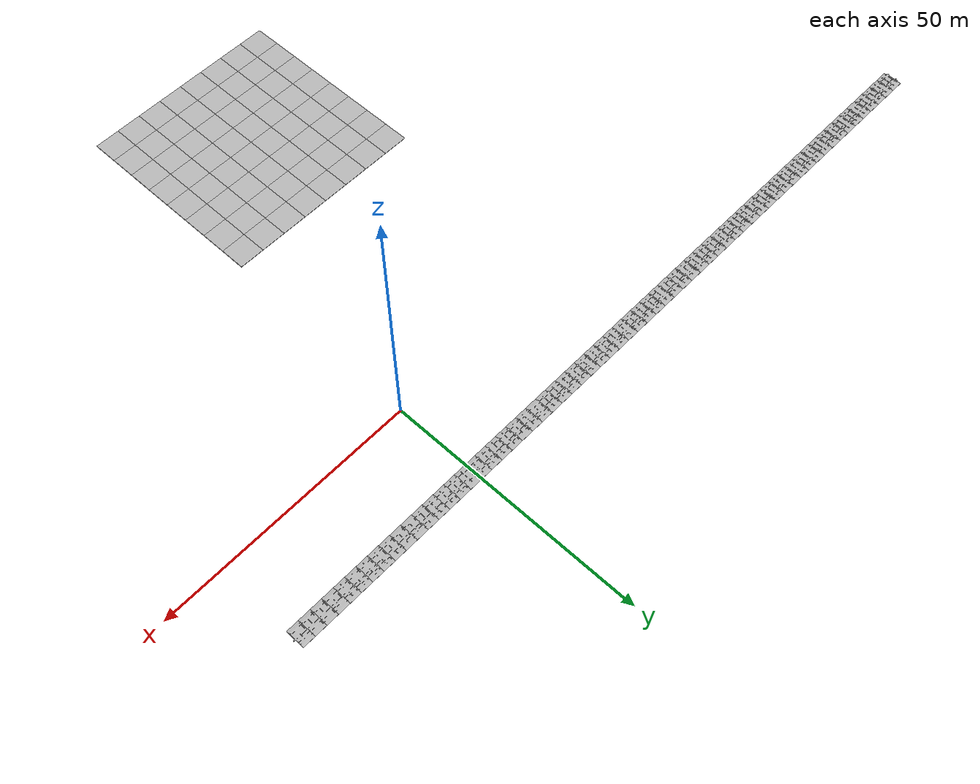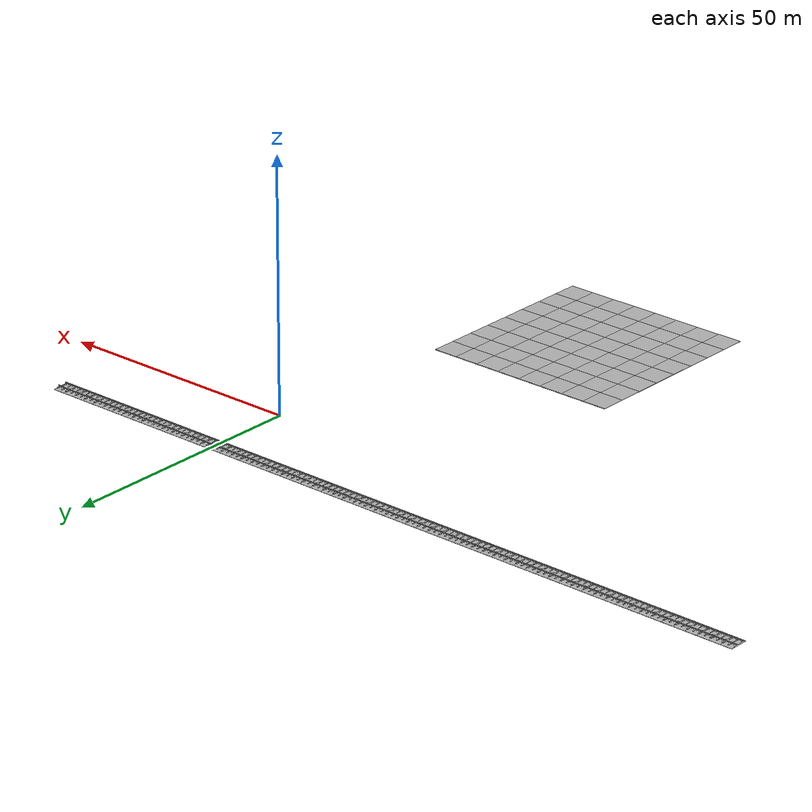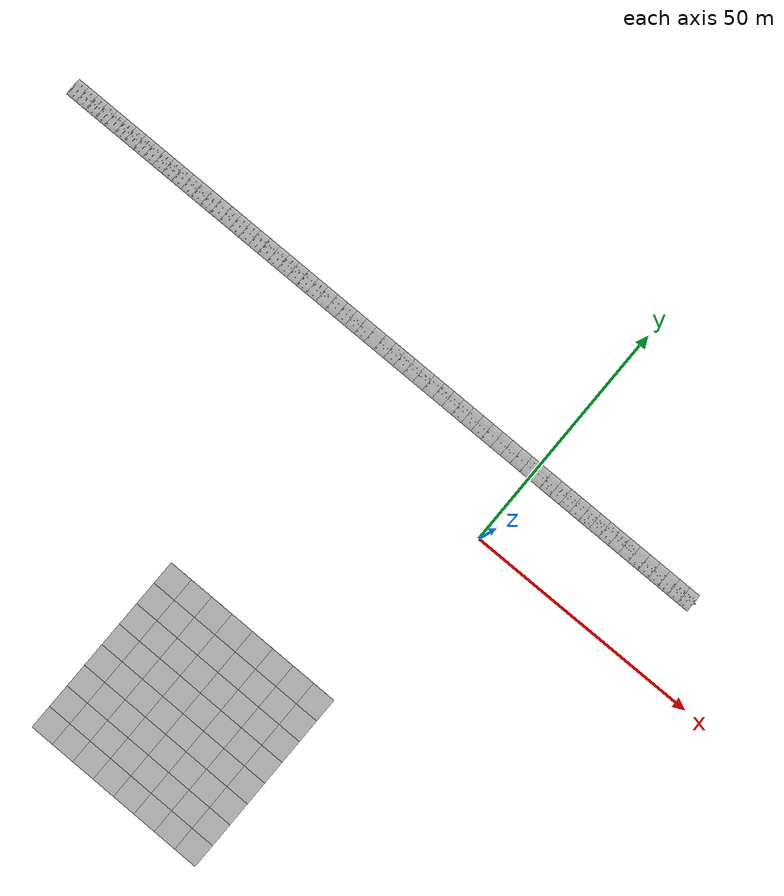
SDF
<sdf version="1.7">
 <world name="default">
  <model name="railway64_2">
   <model name="railway32">
    <model name="railway16">
     <model name="railway8">
      <model name="railway4">
       <model name="railway2">
        <model name="railway">
         <static>1</static>
         <link name="link">
          <visual name="visual"><geometry><mesh><uri>model://railway/meshes/model.dae</uri></mesh></geometry></visual>
         </link>
         <pose>1.19969 -6.9e-05 0 0 -0 0</pose>
        </model>
        <model name="railway_0">
         <static>1</static>
         <link name="link">
          <visual name="visual"><geometry><mesh><uri>model://railway/meshes/model.dae</uri></mesh></geometry></visual>
         </link>
         <pose>-1.1997 6.9e-05 0 0 -0 0</pose>
        </model>
        <static>0</static>
        <pose>-2.39934 4.6e-05 0 0 -0 0</pose>
       </model>
       <model name="railway2_0">
        <model name="railway">
         <static>1</static>
         <link name="link">
          <visual name="visual"><geometry><mesh><uri>model://railway/meshes/model.dae</uri></mesh></geometry></visual>
         </link>
         <pose>1.19969 -6.9e-05 0 0 -0 0</pose>
        </model>
        <model name="railway_0">
         <static>1</static>
         <link name="link">
          <visual name="visual"><geometry><mesh><uri>model://railway/meshes/model.dae</uri></mesh></geometry></visual>
         </link>
         <pose>-1.1997 6.9e-05 0 0 -0 0</pose>
        </model>
        <static>0</static>
        <pose>2.39934 -5.4e-05 0 0 -0 0</pose>
       </model>
       <static>0</static>
       <pose>4.79871 -0.000105 0 0 -0 0</pose>
      </model>
      <model name="railway4_0">
       <model name="railway2">
        <model name="railway">
         <static>1</static>
         <link name="link">
          <visual name="visual"><geometry><mesh><uri>model://railway/meshes/model.dae</uri></mesh></geometry></visual>
         </link>
         <pose>1.19969 -6.9e-05 0 0 -0 0</pose>
        </model>
        <model name="railway_0">
         <static>1</static>
         <link name="link">
          <visual name="visual"><geometry><mesh><uri>model://railway/meshes/model.dae</uri></mesh></geometry></visual>
         </link>
         <pose>-1.1997 6.9e-05 0 0 -0 0</pose>
        </model>
        <static>0</static>
        <pose>-2.39934 4.6e-05 0 0 -0 0</pose>
       </model>
       <model name="railway2_0">
        <model name="railway">
         <static>1</static>
         <link name="link">
          <visual name="visual"><geometry><mesh><uri>model://railway/meshes/model.dae</uri></mesh></geometry></visual>
         </link>
         <pose>1.19969 -6.9e-05 0 0 -0 0</pose>
        </model>
        <model name="railway_0">
         <static>1</static>
         <link name="link">
          <visual name="visual"><geometry><mesh><uri>model://railway/meshes/model.dae</uri></mesh></geometry></visual>
         </link>
         <pose>-1.1997 6.9e-05 0 0 -0 0</pose>
        </model>
        <static>0</static>
        <pose>2.39934 -5.4e-05 0 0 -0 0</pose>
       </model>
       <static>0</static>
       <pose>-4.79871 9.6e-05 0 0 -0 0</pose>
      </model>
      <static>0</static>
      <pose>9.5973 -0.000147 0 0 -0 0</pose>
     </model>
     <model name="railway8_0">
      <model name="railway4">
       <model name="railway2">
        <model name="railway">
         <static>1</static>
         <link name="link">
          <visual name="visual"><geometry><mesh><uri>model://railway/meshes/model.dae</uri></mesh></geometry></visual>
         </link>
         <pose>1.19969 -6.9e-05 0 0 -0 0</pose>
        </model>
        <model name="railway_0">
         <static>1</static>
         <link name="link">
          <visual name="visual"><geometry><mesh><uri>model://railway/meshes/model.dae</uri></mesh></geometry></visual>
         </link>
         <pose>-1.1997 6.9e-05 0 0 -0 0</pose>
        </model>
        <static>0</static>
        <pose>-2.39934 4.6e-05 0 0 -0 0</pose>
       </model>
       <model name="railway2_0">
        <model name="railway">
         <static>1</static>
         <link name="link">
          <visual name="visual"><geometry><mesh><uri>model://railway/meshes/model.dae</uri></mesh></geometry></visual>
         </link>
         <pose>1.19969 -6.9e-05 0 0 -0 0</pose>
        </model>
        <model name="railway_0">
         <static>1</static>
         <link name="link">
          <visual name="visual"><geometry><mesh><uri>model://railway/meshes/model.dae</uri></mesh></geometry></visual>
         </link>
         <pose>-1.1997 6.9e-05 0 0 -0 0</pose>
        </model>
        <static>0</static>
        <pose>2.39934 -5.4e-05 0 0 -0 0</pose>
       </model>
       <static>0</static>
       <pose>4.79871 -0.000105 0 0 -0 0</pose>
      </model>
      <model name="railway4_0">
       <model name="railway2">
        <model name="railway">
         <static>1</static>
         <link name="link">
          <visual name="visual"><geometry><mesh><uri>model://railway/meshes/model.dae</uri></mesh></geometry></visual>
         </link>
         <pose>1.19969 -6.9e-05 0 0 -0 0</pose>
        </model>
        <model name="railway_0">
         <static>1</static>
         <link name="link">
          <visual name="visual"><geometry><mesh><uri>model://railway/meshes/model.dae</uri></mesh></geometry></visual>
         </link>
         <pose>-1.1997 6.9e-05 0 0 -0 0</pose>
        </model>
        <static>0</static>
        <pose>-2.39934 4.6e-05 0 0 -0 0</pose>
       </model>
       <model name="railway2_0">
        <model name="railway">
         <static>1</static>
         <link name="link">
          <visual name="visual"><geometry><mesh><uri>model://railway/meshes/model.dae</uri></mesh></geometry></visual>
         </link>
         <pose>1.19969 -6.9e-05 0 0 -0 0</pose>
        </model>
        <model name="railway_0">
         <static>1</static>
         <link name="link">
          <visual name="visual"><geometry><mesh><uri>model://railway/meshes/model.dae</uri></mesh></geometry></visual>
         </link>
         <pose>-1.1997 6.9e-05 0 0 -0 0</pose>
        </model>
        <static>0</static>
        <pose>2.39934 -5.4e-05 0 0 -0 0</pose>
       </model>
       <static>0</static>
       <pose>-4.79871 9.6e-05 0 0 -0 0</pose>
      </model>
      <static>0</static>
      <pose>-9.59731 0.000145 0 0 -0 0</pose>
     </model>
     <static>0</static>
     <pose>19.1948 -0.00044 0 0 -0 0</pose>
    </model>
    <model name="railway16_0">
     <model name="railway8">
      <model name="railway4">
       <model name="railway2">
        <model name="railway">
         <static>1</static>
         <link name="link">
          <visual name="visual"><geometry><mesh><uri>model://railway/meshes/model.dae</uri></mesh></geometry></visual>
         </link>
         <pose>1.19969 -6.9e-05 0 0 -0 0</pose>
        </model>
        <model name="railway_0">
         <static>1</static>
         <link name="link">
          <visual name="visual"><geometry><mesh><uri>model://railway/meshes/model.dae</uri></mesh></geometry></visual>
         </link>
         <pose>-1.1997 6.9e-05 0 0 -0 0</pose>
        </model>
        <static>0</static>
        <pose>-2.39934 4.6e-05 0 0 -0 0</pose>
       </model>
       <model name="railway2_0">
        <model name="railway">
         <static>1</static>
         <link name="link">
          <visual name="visual"><geometry><mesh><uri>model://railway/meshes/model.dae</uri></mesh></geometry></visual>
         </link>
         <pose>1.19969 -6.9e-05 0 0 -0 0</pose>
        </model>
        <model name="railway_0">
         <static>1</static>
         <link name="link">
          <visual name="visual"><geometry><mesh><uri>model://railway/meshes/model.dae</uri></mesh></geometry></visual>
         </link>
         <pose>-1.1997 6.9e-05 0 0 -0 0</pose>
        </model>
        <static>0</static>
        <pose>2.39934 -5.4e-05 0 0 -0 0</pose>
       </model>
       <static>0</static>
       <pose>4.79871 -0.000105 0 0 -0 0</pose>
      </model>
      <model name="railway4_0">
       <model name="railway2">
        <model name="railway">
         <static>1</static>
         <link name="link">
          <visual name="visual"><geometry><mesh><uri>model://railway/meshes/model.dae</uri></mesh></geometry></visual>
         </link>
         <pose>1.19969 -6.9e-05 0 0 -0 0</pose>
        </model>
        <model name="railway_0">
         <static>1</static>
         <link name="link">
          <visual name="visual"><geometry><mesh><uri>model://railway/meshes/model.dae</uri></mesh></geometry></visual>
         </link>
         <pose>-1.1997 6.9e-05 0 0 -0 0</pose>
        </model>
        <static>0</static>
        <pose>-2.39934 4.6e-05 0 0 -0 0</pose>
       </model>
       <model name="railway2_0">
        <model name="railway">
         <static>1</static>
         <link name="link">
          <visual name="visual"><geometry><mesh><uri>model://railway/meshes/model.dae</uri></mesh></geometry></visual>
         </link>
         <pose>1.19969 -6.9e-05 0 0 -0 0</pose>
        </model>
        <model name="railway_0">
         <static>1</static>
         <link name="link">
          <visual name="visual"><geometry><mesh><uri>model://railway/meshes/model.dae</uri></mesh></geometry></visual>
         </link>
         <pose>-1.1997 6.9e-05 0 0 -0 0</pose>
        </model>
        <static>0</static>
        <pose>2.39934 -5.4e-05 0 0 -0 0</pose>
       </model>
       <static>0</static>
       <pose>-4.79871 9.6e-05 0 0 -0 0</pose>
      </model>
      <static>0</static>
      <pose>9.5973 -0.000147 0 0 -0 0</pose>
     </model>
     <model name="railway8_0">
      <model name="railway4">
       <model name="railway2">
        <model name="railway">
         <static>1</static>
         <link name="link">
          <visual name="visual"><geometry><mesh><uri>model://railway/meshes/model.dae</uri></mesh></geometry></visual>
         </link>
         <pose>1.19969 -6.9e-05 0 0 -0 0</pose>
        </model>
        <model name="railway_0">
         <static>1</static>
         <link name="link">
          <visual name="visual"><geometry><mesh><uri>model://railway/meshes/model.dae</uri></mesh></geometry></visual>
         </link>
         <pose>-1.1997 6.9e-05 0 0 -0 0</pose>
        </model>
        <static>0</static>
        <pose>-2.39934 4.6e-05 0 0 -0 0</pose>
       </model>
       <model name="railway2_0">
        <model name="railway">
         <static>1</static>
         <link name="link">
          <visual name="visual"><geometry><mesh><uri>model://railway/meshes/model.dae</uri></mesh></geometry></visual>
         </link>
         <pose>1.19969 -6.9e-05 0 0 -0 0</pose>
        </model>
        <model name="railway_0">
         <static>1</static>
         <link name="link">
          <visual name="visual"><geometry><mesh><uri>model://railway/meshes/model.dae</uri></mesh></geometry></visual>
         </link>
         <pose>-1.1997 6.9e-05 0 0 -0 0</pose>
        </model>
        <static>0</static>
        <pose>2.39934 -5.4e-05 0 0 -0 0</pose>
       </model>
       <static>0</static>
       <pose>4.79871 -0.000105 0 0 -0 0</pose>
      </model>
      <model name="railway4_0">
       <model name="railway2">
        <model name="railway">
         <static>1</static>
         <link name="link">
          <visual name="visual"><geometry><mesh><uri>model://railway/meshes/model.dae</uri></mesh></geometry></visual>
         </link>
         <pose>1.19969 -6.9e-05 0 0 -0 0</pose>
        </model>
        <model name="railway_0">
         <static>1</static>
         <link name="link">
          <visual name="visual"><geometry><mesh><uri>model://railway/meshes/model.dae</uri></mesh></geometry></visual>
         </link>
         <pose>-1.1997 6.9e-05 0 0 -0 0</pose>
        </model>
        <static>0</static>
        <pose>-2.39934 4.6e-05 0 0 -0 0</pose>
       </model>
       <model name="railway2_0">
        <model name="railway">
         <static>1</static>
         <link name="link">
          <visual name="visual"><geometry><mesh><uri>model://railway/meshes/model.dae</uri></mesh></geometry></visual>
         </link>
         <pose>1.19969 -6.9e-05 0 0 -0 0</pose>
        </model>
        <model name="railway_0">
         <static>1</static>
         <link name="link">
          <visual name="visual"><geometry><mesh><uri>model://railway/meshes/model.dae</uri></mesh></geometry></visual>
         </link>
         <pose>-1.1997 6.9e-05 0 0 -0 0</pose>
        </model>
        <static>0</static>
        <pose>2.39934 -5.4e-05 0 0 -0 0</pose>
       </model>
       <static>0</static>
       <pose>-4.79871 9.6e-05 0 0 -0 0</pose>
      </model>
      <static>0</static>
      <pose>-9.59731 0.000145 0 0 -0 0</pose>
     </model>
     <static>0</static>
     <pose>-19.1948 0.000444 0 0 -0 0</pose>
    </model>
    <static>0</static>
    <pose>38.3896 -0.000844 0 0 -0 0</pose>
   </model>
   <model name="railway32_0">
    <model name="railway16">
     <model name="railway8">
      <model name="railway4">
       <model name="railway2">
        <model name="railway">
         <static>1</static>
         <link name="link">
          <visual name="visual"><geometry><mesh><uri>model://railway/meshes/model.dae</uri></mesh></geometry></visual>
         </link>
         <pose>1.19969 -6.9e-05 0 0 -0 0</pose>
        </model>
        <model name="railway_0">
         <static>1</static>
         <link name="link">
          <visual name="visual"><geometry><mesh><uri>model://railway/meshes/model.dae</uri></mesh></geometry></visual>
         </link>
         <pose>-1.1997 6.9e-05 0 0 -0 0</pose>
        </model>
        <static>0</static>
        <pose>-2.39934 4.6e-05 0 0 -0 0</pose>
       </model>
       <model name="railway2_0">
        <model name="railway">
         <static>1</static>
         <link name="link">
          <visual name="visual"><geometry><mesh><uri>model://railway/meshes/model.dae</uri></mesh></geometry></visual>
         </link>
         <pose>1.19969 -6.9e-05 0 0 -0 0</pose>
        </model>
        <model name="railway_0">
         <static>1</static>
         <link name="link">
          <visual name="visual"><geometry><mesh><uri>model://railway/meshes/model.dae</uri></mesh></geometry></visual>
         </link>
         <pose>-1.1997 6.9e-05 0 0 -0 0</pose>
        </model>
        <static>0</static>
        <pose>2.39934 -5.4e-05 0 0 -0 0</pose>
       </model>
       <static>0</static>
       <pose>4.79871 -0.000105 0 0 -0 0</pose>
      </model>
      <model name="railway4_0">
       <model name="railway2">
        <model name="railway">
         <static>1</static>
         <link name="link">
          <visual name="visual"><geometry><mesh><uri>model://railway/meshes/model.dae</uri></mesh></geometry></visual>
         </link>
         <pose>1.19969 -6.9e-05 0 0 -0 0</pose>
        </model>
        <model name="railway_0">
         <static>1</static>
         <link name="link">
          <visual name="visual"><geometry><mesh><uri>model://railway/meshes/model.dae</uri></mesh></geometry></visual>
         </link>
         <pose>-1.1997 6.9e-05 0 0 -0 0</pose>
        </model>
        <static>0</static>
        <pose>-2.39934 4.6e-05 0 0 -0 0</pose>
       </model>
       <model name="railway2_0">
        <model name="railway">
         <static>1</static>
         <link name="link">
          <visual name="visual"><geometry><mesh><uri>model://railway/meshes/model.dae</uri></mesh></geometry></visual>
         </link>
         <pose>1.19969 -6.9e-05 0 0 -0 0</pose>
        </model>
        <model name="railway_0">
         <static>1</static>
         <link name="link">
          <visual name="visual"><geometry><mesh><uri>model://railway/meshes/model.dae</uri></mesh></geometry></visual>
         </link>
         <pose>-1.1997 6.9e-05 0 0 -0 0</pose>
        </model>
        <static>0</static>
        <pose>2.39934 -5.4e-05 0 0 -0 0</pose>
       </model>
       <static>0</static>
       <pose>-4.79871 9.6e-05 0 0 -0 0</pose>
      </model>
      <static>0</static>
      <pose>9.5973 -0.000147 0 0 -0 0</pose>
     </model>
     <model name="railway8_0">
      <model name="railway4">
       <model name="railway2">
        <model name="railway">
         <static>1</static>
         <link name="link">
          <visual name="visual"><geometry><mesh><uri>model://railway/meshes/model.dae</uri></mesh></geometry></visual>
         </link>
         <pose>1.19969 -6.9e-05 0 0 -0 0</pose>
        </model>
        <model name="railway_0">
         <static>1</static>
         <link name="link">
          <visual name="visual"><geometry><mesh><uri>model://railway/meshes/model.dae</uri></mesh></geometry></visual>
         </link>
         <pose>-1.1997 6.9e-05 0 0 -0 0</pose>
        </model>
        <static>0</static>
        <pose>-2.39934 4.6e-05 0 0 -0 0</pose>
       </model>
       <model name="railway2_0">
        <model name="railway">
         <static>1</static>
         <link name="link">
          <visual name="visual"><geometry><mesh><uri>model://railway/meshes/model.dae</uri></mesh></geometry></visual>
         </link>
         <pose>1.19969 -6.9e-05 0 0 -0 0</pose>
        </model>
        <model name="railway_0">
         <static>1</static>
         <link name="link">
          <visual name="visual"><geometry><mesh><uri>model://railway/meshes/model.dae</uri></mesh></geometry></visual>
         </link>
         <pose>-1.1997 6.9e-05 0 0 -0 0</pose>
        </model>
        <static>0</static>
        <pose>2.39934 -5.4e-05 0 0 -0 0</pose>
       </model>
       <static>0</static>
       <pose>4.79871 -0.000105 0 0 -0 0</pose>
      </model>
      <model name="railway4_0">
       <model name="railway2">
        <model name="railway">
         <static>1</static>
         <link name="link">
          <visual name="visual"><geometry><mesh><uri>model://railway/meshes/model.dae</uri></mesh></geometry></visual>
         </link>
         <pose>1.19969 -6.9e-05 0 0 -0 0</pose>
        </model>
        <model name="railway_0">
         <static>1</static>
         <link name="link">
          <visual name="visual"><geometry><mesh><uri>model://railway/meshes/model.dae</uri></mesh></geometry></visual>
         </link>
         <pose>-1.1997 6.9e-05 0 0 -0 0</pose>
        </model>
        <static>0</static>
        <pose>-2.39934 4.6e-05 0 0 -0 0</pose>
       </model>
       <model name="railway2_0">
        <model name="railway">
         <static>1</static>
         <link name="link">
          <visual name="visual"><geometry><mesh><uri>model://railway/meshes/model.dae</uri></mesh></geometry></visual>
         </link>
         <pose>1.19969 -6.9e-05 0 0 -0 0</pose>
        </model>
        <model name="railway_0">
         <static>1</static>
         <link name="link">
          <visual name="visual"><geometry><mesh><uri>model://railway/meshes/model.dae</uri></mesh></geometry></visual>
         </link>
         <pose>-1.1997 6.9e-05 0 0 -0 0</pose>
        </model>
        <static>0</static>
        <pose>2.39934 -5.4e-05 0 0 -0 0</pose>
       </model>
       <static>0</static>
       <pose>-4.79871 9.6e-05 0 0 -0 0</pose>
      </model>
      <static>0</static>
      <pose>-9.59731 0.000145 0 0 -0 0</pose>
     </model>
     <static>0</static>
     <pose>19.1948 -0.00044 0 0 -0 0</pose>
    </model>
    <model name="railway16_0">
     <model name="railway8">
      <model name="railway4">
       <model name="railway2">
        <model name="railway">
         <static>1</static>
         <link name="link">
          <visual name="visual"><geometry><mesh><uri>model://railway/meshes/model.dae</uri></mesh></geometry></visual>
         </link>
         <pose>1.19969 -6.9e-05 0 0 -0 0</pose>
        </model>
        <model name="railway_0">
         <static>1</static>
         <link name="link">
          <visual name="visual"><geometry><mesh><uri>model://railway/meshes/model.dae</uri></mesh></geometry></visual>
         </link>
         <pose>-1.1997 6.9e-05 0 0 -0 0</pose>
        </model>
        <static>0</static>
        <pose>-2.39934 4.6e-05 0 0 -0 0</pose>
       </model>
       <model name="railway2_0">
        <model name="railway">
         <static>1</static>
         <link name="link">
          <visual name="visual"><geometry><mesh><uri>model://railway/meshes/model.dae</uri></mesh></geometry></visual>
         </link>
         <pose>1.19969 -6.9e-05 0 0 -0 0</pose>
        </model>
        <model name="railway_0">
         <static>1</static>
         <link name="link">
          <visual name="visual"><geometry><mesh><uri>model://railway/meshes/model.dae</uri></mesh></geometry></visual>
         </link>
         <pose>-1.1997 6.9e-05 0 0 -0 0</pose>
        </model>
        <static>0</static>
        <pose>2.39934 -5.4e-05 0 0 -0 0</pose>
       </model>
       <static>0</static>
       <pose>4.79871 -0.000105 0 0 -0 0</pose>
      </model>
      <model name="railway4_0">
       <model name="railway2">
        <model name="railway">
         <static>1</static>
         <link name="link">
          <visual name="visual"><geometry><mesh><uri>model://railway/meshes/model.dae</uri></mesh></geometry></visual>
         </link>
         <pose>1.19969 -6.9e-05 0 0 -0 0</pose>
        </model>
        <model name="railway_0">
         <static>1</static>
         <link name="link">
          <visual name="visual"><geometry><mesh><uri>model://railway/meshes/model.dae</uri></mesh></geometry></visual>
         </link>
         <pose>-1.1997 6.9e-05 0 0 -0 0</pose>
        </model>
        <static>0</static>
        <pose>-2.39934 4.6e-05 0 0 -0 0</pose>
       </model>
       <model name="railway2_0">
        <model name="railway">
         <static>1</static>
         <link name="link">
          <visual name="visual"><geometry><mesh><uri>model://railway/meshes/model.dae</uri></mesh></geometry></visual>
         </link>
         <pose>1.19969 -6.9e-05 0 0 -0 0</pose>
        </model>
        <model name="railway_0">
         <static>1</static>
         <link name="link">
          <visual name="visual"><geometry><mesh><uri>model://railway/meshes/model.dae</uri></mesh></geometry></visual>
         </link>
         <pose>-1.1997 6.9e-05 0 0 -0 0</pose>
        </model>
        <static>0</static>
        <pose>2.39934 -5.4e-05 0 0 -0 0</pose>
       </model>
       <static>0</static>
       <pose>-4.79871 9.6e-05 0 0 -0 0</pose>
      </model>
      <static>0</static>
      <pose>9.5973 -0.000147 0 0 -0 0</pose>
     </model>
     <model name="railway8_0">
      <model name="railway4">
       <model name="railway2">
        <model name="railway">
         <static>1</static>
         <link name="link">
          <visual name="visual"><geometry><mesh><uri>model://railway/meshes/model.dae</uri></mesh></geometry></visual>
         </link>
         <pose>1.19969 -6.9e-05 0 0 -0 0</pose>
        </model>
        <model name="railway_0">
         <static>1</static>
         <link name="link">
          <visual name="visual"><geometry><mesh><uri>model://railway/meshes/model.dae</uri></mesh></geometry></visual>
         </link>
         <pose>-1.1997 6.9e-05 0 0 -0 0</pose>
        </model>
        <static>0</static>
        <pose>-2.39934 4.6e-05 0 0 -0 0</pose>
       </model>
       <model name="railway2_0">
        <model name="railway">
         <static>1</static>
         <link name="link">
          <visual name="visual"><geometry><mesh><uri>model://railway/meshes/model.dae</uri></mesh></geometry></visual>
         </link>
         <pose>1.19969 -6.9e-05 0 0 -0 0</pose>
        </model>
        <model name="railway_0">
         <static>1</static>
         <link name="link">
          <visual name="visual"><geometry><mesh><uri>model://railway/meshes/model.dae</uri></mesh></geometry></visual>
         </link>
         <pose>-1.1997 6.9e-05 0 0 -0 0</pose>
        </model>
        <static>0</static>
        <pose>2.39934 -5.4e-05 0 0 -0 0</pose>
       </model>
       <static>0</static>
       <pose>4.79871 -0.000105 0 0 -0 0</pose>
      </model>
      <model name="railway4_0">
       <model name="railway2">
        <model name="railway">
         <static>1</static>
         <link name="link">
          <visual name="visual"><geometry><mesh><uri>model://railway/meshes/model.dae</uri></mesh></geometry></visual>
         </link>
         <pose>1.19969 -6.9e-05 0 0 -0 0</pose>
        </model>
        <model name="railway_0">
         <static>1</static>
         <link name="link">
          <visual name="visual"><geometry><mesh><uri>model://railway/meshes/model.dae</uri></mesh></geometry></visual>
         </link>
         <pose>-1.1997 6.9e-05 0 0 -0 0</pose>
        </model>
        <static>0</static>
        <pose>-2.39934 4.6e-05 0 0 -0 0</pose>
       </model>
       <model name="railway2_0">
        <model name="railway">
         <static>1</static>
         <link name="link">
          <visual name="visual"><geometry><mesh><uri>model://railway/meshes/model.dae</uri></mesh></geometry></visual>
         </link>
         <pose>1.19969 -6.9e-05 0 0 -0 0</pose>
        </model>
        <model name="railway_0">
         <static>1</static>
         <link name="link">
          <visual name="visual"><geometry><mesh><uri>model://railway/meshes/model.dae</uri></mesh></geometry></visual>
         </link>
         <pose>-1.1997 6.9e-05 0 0 -0 0</pose>
        </model>
        <static>0</static>
        <pose>2.39934 -5.4e-05 0 0 -0 0</pose>
       </model>
       <static>0</static>
       <pose>-4.79871 9.6e-05 0 0 -0 0</pose>
      </model>
      <static>0</static>
      <pose>-9.59731 0.000145 0 0 -0 0</pose>
     </model>
     <static>0</static>
     <pose>-19.1948 0.000444 0 0 -0 0</pose>
    </model>
    <static>0</static>
    <pose>-38.3896 0.000845 0 0 -0 0</pose>
   </model>
   <static>0</static>
   <pose>-39.4349 16.4148 0 0 -0 0</pose>
  </model>
  <model name="mud_plane_80x80">
   <model name="mud_plane_40x40_0">
    <model name="mud_plane_20x20">
     <model name="mud_plane">
      <static>1</static>
      <link name="link">
       <collision name="collision"><geometry><box><size>10 10 0.1</size></box></geometry></collision>
       <visual name="visual_1">
        <pose>-2.5 2.5 -0.05 0 -0 0</pose>
        <cast_shadows>0</cast_shadows>
        <geometry><box><size>5 5 0.1</size></box></geometry>
        <material>
         <script>
          <uri>model://mud_plane/materials/scripts</uri>
          <uri>model://mud_plane/materials/textures</uri>
          <name>vrc/mud</name>
         </script>
        </material>
       </visual>
       <visual name="visual_2">
        <pose>2.5 2.5 -0.05 0 -0 0</pose>
        <cast_shadows>0</cast_shadows>
        <geometry><box><size>5 5 0.1</size></box></geometry>
        <material>
         <script>
          <uri>model://mud_plane/materials/scripts</uri>
          <uri>model://mud_plane/materials/textures</uri>
          <name>vrc/mud</name>
         </script>
        </material>
       </visual>
       <visual name="visual_3">
        <pose>2.5 -2.5 -0.05 0 -0 0</pose>
        <cast_shadows>0</cast_shadows>
        <geometry><box><size>5 5 0.1</size></box></geometry>
        <material>
         <script>
          <uri>model://mud_plane/materials/scripts</uri>
          <uri>model://mud_plane/materials/textures</uri>
          <name>vrc/mud</name>
         </script>
        </material>
       </visual>
       <visual name="visual_4">
        <pose>-2.5 -2.5 -0.05 0 -0 0</pose>
        <cast_shadows>0</cast_shadows>
        <geometry><box><size>5 5 0.1</size></box></geometry>
        <material>
         <script>
          <uri>model://mud_plane/materials/scripts</uri>
          <uri>model://mud_plane/materials/textures</uri>
          <name>vrc/mud</name>
         </script>
        </material>
       </visual>
      </link>
      <pose>-4.99986 -4.99991 0 0 -0 0</pose>
     </model>
     <model name="mud_plane_0">
      <static>1</static>
      <link name="link">
       <collision name="collision"><geometry><box><size>10 10 0.1</size></box></geometry></collision>
       <visual name="visual_1">
        <pose>-2.5 2.5 -0.05 0 -0 0</pose>
        <cast_shadows>0</cast_shadows>
        <geometry><box><size>5 5 0.1</size></box></geometry>
        <material>
         <script>
          <uri>model://mud_plane/materials/scripts</uri>
          <uri>model://mud_plane/materials/textures</uri>
          <name>vrc/mud</name>
         </script>
        </material>
       </visual>
       <visual name="visual_2">
        <pose>2.5 2.5 -0.05 0 -0 0</pose>
        <cast_shadows>0</cast_shadows>
        <geometry><box><size>5 5 0.1</size></box></geometry>
        <material>
         <script>
          <uri>model://mud_plane/materials/scripts</uri>
          <uri>model://mud_plane/materials/textures</uri>
          <name>vrc/mud</name>
         </script>
        </material>
       </visual>
       <visual name="visual_3">
        <pose>2.5 -2.5 -0.05 0 -0 0</pose>
        <cast_shadows>0</cast_shadows>
        <geometry><box><size>5 5 0.1</size></box></geometry>
        <material>
         <script>
          <uri>model://mud_plane/materials/scripts</uri>
          <uri>model://mud_plane/materials/textures</uri>
          <name>vrc/mud</name>
         </script>
        </material>
       </visual>
       <visual name="visual_4">
        <pose>-2.5 -2.5 -0.05 0 -0 0</pose>
        <cast_shadows>0</cast_shadows>
        <geometry><box><size>5 5 0.1</size></box></geometry>
        <material>
         <script>
          <uri>model://mud_plane/materials/scripts</uri>
          <uri>model://mud_plane/materials/textures</uri>
          <name>vrc/mud</name>
         </script>
        </material>
       </visual>
      </link>
      <pose>-4.99946 4.99954 0 0 -0 0</pose>
     </model>
     <model name="mud_plane_1">
      <static>1</static>
      <link name="link">
       <collision name="collision"><geometry><box><size>10 10 0.1</size></box></geometry></collision>
       <visual name="visual_1">
        <pose>-2.5 2.5 -0.05 0 -0 0</pose>
        <cast_shadows>0</cast_shadows>
        <geometry><box><size>5 5 0.1</size></box></geometry>
        <material>
         <script>
          <uri>model://mud_plane/materials/scripts</uri>
          <uri>model://mud_plane/materials/textures</uri>
          <name>vrc/mud</name>
         </script>
        </material>
       </visual>
       <visual name="visual_2">
        <pose>2.5 2.5 -0.05 0 -0 0</pose>
        <cast_shadows>0</cast_shadows>
        <geometry><box><size>5 5 0.1</size></box></geometry>
        <material>
         <script>
          <uri>model://mud_plane/materials/scripts</uri>
          <uri>model://mud_plane/materials/textures</uri>
          <name>vrc/mud</name>
         </script>
        </material>
       </visual>
       <visual name="visual_3">
        <pose>2.5 -2.5 -0.05 0 -0 0</pose>
        <cast_shadows>0</cast_shadows>
        <geometry><box><size>5 5 0.1</size></box></geometry>
        <material>
         <script>
          <uri>model://mud_plane/materials/scripts</uri>
          <uri>model://mud_plane/materials/textures</uri>
          <name>vrc/mud</name>
         </script>
        </material>
       </visual>
       <visual name="visual_4">
        <pose>-2.5 -2.5 -0.05 0 -0 0</pose>
        <cast_shadows>0</cast_shadows>
        <geometry><box><size>5 5 0.1</size></box></geometry>
        <material>
         <script>
          <uri>model://mud_plane/materials/scripts</uri>
          <uri>model://mud_plane/materials/textures</uri>
          <name>vrc/mud</name>
         </script>
        </material>
       </visual>
      </link>
      <pose>4.99964 -4.99949 0 0 -0 0</pose>
     </model>
     <model name="mud_plane_2">
      <static>1</static>
      <link name="link">
       <collision name="collision"><geometry><box><size>10 10 0.1</size></box></geometry></collision>
       <visual name="visual_1">
        <pose>-2.5 2.5 -0.05 0 -0 0</pose>
        <cast_shadows>0</cast_shadows>
        <geometry><box><size>5 5 0.1</size></box></geometry>
        <material>
         <script>
          <uri>model://mud_plane/materials/scripts</uri>
          <uri>model://mud_plane/materials/textures</uri>
          <name>vrc/mud</name>
         </script>
        </material>
       </visual>
       <visual name="visual_2">
        <pose>2.5 2.5 -0.05 0 -0 0</pose>
        <cast_shadows>0</cast_shadows>
        <geometry><box><size>5 5 0.1</size></box></geometry>
        <material>
         <script>
          <uri>model://mud_plane/materials/scripts</uri>
          <uri>model://mud_plane/materials/textures</uri>
          <name>vrc/mud</name>
         </script>
        </material>
       </visual>
       <visual name="visual_3">
        <pose>2.5 -2.5 -0.05 0 -0 0</pose>
        <cast_shadows>0</cast_shadows>
        <geometry><box><size>5 5 0.1</size></box></geometry>
        <material>
         <script>
          <uri>model://mud_plane/materials/scripts</uri>
          <uri>model://mud_plane/materials/textures</uri>
          <name>vrc/mud</name>
         </script>
        </material>
       </visual>
       <visual name="visual_4">
        <pose>-2.5 -2.5 -0.05 0 -0 0</pose>
        <cast_shadows>0</cast_shadows>
        <geometry><box><size>5 5 0.1</size></box></geometry>
        <material>
         <script>
          <uri>model://mud_plane/materials/scripts</uri>
          <uri>model://mud_plane/materials/textures</uri>
          <name>vrc/mud</name>
         </script>
        </material>
       </visual>
      </link>
      <pose>4.99967 4.99986 0 0 -0 0</pose>
     </model>
     <static>0</static>
     <pose>-9.99895 9.99843 0 0 -0 0</pose>
    </model>
    <model name="mud_plane_20x20_0">
     <model name="mud_plane">
      <static>1</static>
      <link name="link">
       <collision name="collision"><geometry><box><size>10 10 0.1</size></box></geometry></collision>
       <visual name="visual_1">
        <pose>-2.5 2.5 -0.05 0 -0 0</pose>
        <cast_shadows>0</cast_shadows>
        <geometry><box><size>5 5 0.1</size></box></geometry>
        <material>
         <script>
          <uri>model://mud_plane/materials/scripts</uri>
          <uri>model://mud_plane/materials/textures</uri>
          <name>vrc/mud</name>
         </script>
        </material>
       </visual>
       <visual name="visual_2">
        <pose>2.5 2.5 -0.05 0 -0 0</pose>
        <cast_shadows>0</cast_shadows>
        <geometry><box><size>5 5 0.1</size></box></geometry>
        <material>
         <script>
          <uri>model://mud_plane/materials/scripts</uri>
          <uri>model://mud_plane/materials/textures</uri>
          <name>vrc/mud</name>
         </script>
        </material>
       </visual>
       <visual name="visual_3">
        <pose>2.5 -2.5 -0.05 0 -0 0</pose>
        <cast_shadows>0</cast_shadows>
        <geometry><box><size>5 5 0.1</size></box></geometry>
        <material>
         <script>
          <uri>model://mud_plane/materials/scripts</uri>
          <uri>model://mud_plane/materials/textures</uri>
          <name>vrc/mud</name>
         </script>
        </material>
       </visual>
       <visual name="visual_4">
        <pose>-2.5 -2.5 -0.05 0 -0 0</pose>
        <cast_shadows>0</cast_shadows>
        <geometry><box><size>5 5 0.1</size></box></geometry>
        <material>
         <script>
          <uri>model://mud_plane/materials/scripts</uri>
          <uri>model://mud_plane/materials/textures</uri>
          <name>vrc/mud</name>
         </script>
        </material>
       </visual>
      </link>
      <pose>-4.99986 -4.99991 0 0 -0 0</pose>
     </model>
     <model name="mud_plane_0">
      <static>1</static>
      <link name="link">
       <collision name="collision"><geometry><box><size>10 10 0.1</size></box></geometry></collision>
       <visual name="visual_1">
        <pose>-2.5 2.5 -0.05 0 -0 0</pose>
        <cast_shadows>0</cast_shadows>
        <geometry><box><size>5 5 0.1</size></box></geometry>
        <material>
         <script>
          <uri>model://mud_plane/materials/scripts</uri>
          <uri>model://mud_plane/materials/textures</uri>
          <name>vrc/mud</name>
         </script>
        </material>
       </visual>
       <visual name="visual_2">
        <pose>2.5 2.5 -0.05 0 -0 0</pose>
        <cast_shadows>0</cast_shadows>
        <geometry><box><size>5 5 0.1</size></box></geometry>
        <material>
         <script>
          <uri>model://mud_plane/materials/scripts</uri>
          <uri>model://mud_plane/materials/textures</uri>
          <name>vrc/mud</name>
         </script>
        </material>
       </visual>
       <visual name="visual_3">
        <pose>2.5 -2.5 -0.05 0 -0 0</pose>
        <cast_shadows>0</cast_shadows>
        <geometry><box><size>5 5 0.1</size></box></geometry>
        <material>
         <script>
          <uri>model://mud_plane/materials/scripts</uri>
          <uri>model://mud_plane/materials/textures</uri>
          <name>vrc/mud</name>
         </script>
        </material>
       </visual>
       <visual name="visual_4">
        <pose>-2.5 -2.5 -0.05 0 -0 0</pose>
        <cast_shadows>0</cast_shadows>
        <geometry><box><size>5 5 0.1</size></box></geometry>
        <material>
         <script>
          <uri>model://mud_plane/materials/scripts</uri>
          <uri>model://mud_plane/materials/textures</uri>
          <name>vrc/mud</name>
         </script>
        </material>
       </visual>
      </link>
      <pose>-4.99946 4.99954 0 0 -0 0</pose>
     </model>
     <model name="mud_plane_1">
      <static>1</static>
      <link name="link">
       <collision name="collision"><geometry><box><size>10 10 0.1</size></box></geometry></collision>
       <visual name="visual_1">
        <pose>-2.5 2.5 -0.05 0 -0 0</pose>
        <cast_shadows>0</cast_shadows>
        <geometry><box><size>5 5 0.1</size></box></geometry>
        <material>
         <script>
          <uri>model://mud_plane/materials/scripts</uri>
          <uri>model://mud_plane/materials/textures</uri>
          <name>vrc/mud</name>
         </script>
        </material>
       </visual>
       <visual name="visual_2">
        <pose>2.5 2.5 -0.05 0 -0 0</pose>
        <cast_shadows>0</cast_shadows>
        <geometry><box><size>5 5 0.1</size></box></geometry>
        <material>
         <script>
          <uri>model://mud_plane/materials/scripts</uri>
          <uri>model://mud_plane/materials/textures</uri>
          <name>vrc/mud</name>
         </script>
        </material>
       </visual>
       <visual name="visual_3">
        <pose>2.5 -2.5 -0.05 0 -0 0</pose>
        <cast_shadows>0</cast_shadows>
        <geometry><box><size>5 5 0.1</size></box></geometry>
        <material>
         <script>
          <uri>model://mud_plane/materials/scripts</uri>
          <uri>model://mud_plane/materials/textures</uri>
          <name>vrc/mud</name>
         </script>
        </material>
       </visual>
       <visual name="visual_4">
        <pose>-2.5 -2.5 -0.05 0 -0 0</pose>
        <cast_shadows>0</cast_shadows>
        <geometry><box><size>5 5 0.1</size></box></geometry>
        <material>
         <script>
          <uri>model://mud_plane/materials/scripts</uri>
          <uri>model://mud_plane/materials/textures</uri>
          <name>vrc/mud</name>
         </script>
        </material>
       </visual>
      </link>
      <pose>4.99964 -4.99949 0 0 -0 0</pose>
     </model>
     <model name="mud_plane_2">
      <static>1</static>
      <link name="link">
       <collision name="collision"><geometry><box><size>10 10 0.1</size></box></geometry></collision>
       <visual name="visual_1">
        <pose>-2.5 2.5 -0.05 0 -0 0</pose>
        <cast_shadows>0</cast_shadows>
        <geometry><box><size>5 5 0.1</size></box></geometry>
        <material>
         <script>
          <uri>model://mud_plane/materials/scripts</uri>
          <uri>model://mud_plane/materials/textures</uri>
          <name>vrc/mud</name>
         </script>
        </material>
       </visual>
       <visual name="visual_2">
        <pose>2.5 2.5 -0.05 0 -0 0</pose>
        <cast_shadows>0</cast_shadows>
        <geometry><box><size>5 5 0.1</size></box></geometry>
        <material>
         <script>
          <uri>model://mud_plane/materials/scripts</uri>
          <uri>model://mud_plane/materials/textures</uri>
          <name>vrc/mud</name>
         </script>
        </material>
       </visual>
       <visual name="visual_3">
        <pose>2.5 -2.5 -0.05 0 -0 0</pose>
        <cast_shadows>0</cast_shadows>
        <geometry><box><size>5 5 0.1</size></box></geometry>
        <material>
         <script>
          <uri>model://mud_plane/materials/scripts</uri>
          <uri>model://mud_plane/materials/textures</uri>
          <name>vrc/mud</name>
         </script>
        </material>
       </visual>
       <visual name="visual_4">
        <pose>-2.5 -2.5 -0.05 0 -0 0</pose>
        <cast_shadows>0</cast_shadows>
        <geometry><box><size>5 5 0.1</size></box></geometry>
        <material>
         <script>
          <uri>model://mud_plane/materials/scripts</uri>
          <uri>model://mud_plane/materials/textures</uri>
          <name>vrc/mud</name>
         </script>
        </material>
       </visual>
      </link>
      <pose>4.99967 4.99986 0 0 -0 0</pose>
     </model>
     <static>0</static>
     <pose>9.99933 9.9997 0 0 -0 0</pose>
    </model>
    <model name="mud_plane_20x20_1">
     <model name="mud_plane">
      <static>1</static>
      <link name="link">
       <collision name="collision"><geometry><box><size>10 10 0.1</size></box></geometry></collision>
       <visual name="visual_1">
        <pose>-2.5 2.5 -0.05 0 -0 0</pose>
        <cast_shadows>0</cast_shadows>
        <geometry><box><size>5 5 0.1</size></box></geometry>
        <material>
         <script>
          <uri>model://mud_plane/materials/scripts</uri>
          <uri>model://mud_plane/materials/textures</uri>
          <name>vrc/mud</name>
         </script>
        </material>
       </visual>
       <visual name="visual_2">
        <pose>2.5 2.5 -0.05 0 -0 0</pose>
        <cast_shadows>0</cast_shadows>
        <geometry><box><size>5 5 0.1</size></box></geometry>
        <material>
         <script>
          <uri>model://mud_plane/materials/scripts</uri>
          <uri>model://mud_plane/materials/textures</uri>
          <name>vrc/mud</name>
         </script>
        </material>
       </visual>
       <visual name="visual_3">
        <pose>2.5 -2.5 -0.05 0 -0 0</pose>
        <cast_shadows>0</cast_shadows>
        <geometry><box><size>5 5 0.1</size></box></geometry>
        <material>
         <script>
          <uri>model://mud_plane/materials/scripts</uri>
          <uri>model://mud_plane/materials/textures</uri>
          <name>vrc/mud</name>
         </script>
        </material>
       </visual>
       <visual name="visual_4">
        <pose>-2.5 -2.5 -0.05 0 -0 0</pose>
        <cast_shadows>0</cast_shadows>
        <geometry><box><size>5 5 0.1</size></box></geometry>
        <material>
         <script>
          <uri>model://mud_plane/materials/scripts</uri>
          <uri>model://mud_plane/materials/textures</uri>
          <name>vrc/mud</name>
         </script>
        </material>
       </visual>
      </link>
      <pose>-4.99986 -4.99991 0 0 -0 0</pose>
     </model>
     <model name="mud_plane_0">
      <static>1</static>
      <link name="link">
       <collision name="collision"><geometry><box><size>10 10 0.1</size></box></geometry></collision>
       <visual name="visual_1">
        <pose>-2.5 2.5 -0.05 0 -0 0</pose>
        <cast_shadows>0</cast_shadows>
        <geometry><box><size>5 5 0.1</size></box></geometry>
        <material>
         <script>
          <uri>model://mud_plane/materials/scripts</uri>
          <uri>model://mud_plane/materials/textures</uri>
          <name>vrc/mud</name>
         </script>
        </material>
       </visual>
       <visual name="visual_2">
        <pose>2.5 2.5 -0.05 0 -0 0</pose>
        <cast_shadows>0</cast_shadows>
        <geometry><box><size>5 5 0.1</size></box></geometry>
        <material>
         <script>
          <uri>model://mud_plane/materials/scripts</uri>
          <uri>model://mud_plane/materials/textures</uri>
          <name>vrc/mud</name>
         </script>
        </material>
       </visual>
       <visual name="visual_3">
        <pose>2.5 -2.5 -0.05 0 -0 0</pose>
        <cast_shadows>0</cast_shadows>
        <geometry><box><size>5 5 0.1</size></box></geometry>
        <material>
         <script>
          <uri>model://mud_plane/materials/scripts</uri>
          <uri>model://mud_plane/materials/textures</uri>
          <name>vrc/mud</name>
         </script>
        </material>
       </visual>
       <visual name="visual_4">
        <pose>-2.5 -2.5 -0.05 0 -0 0</pose>
        <cast_shadows>0</cast_shadows>
        <geometry><box><size>5 5 0.1</size></box></geometry>
        <material>
         <script>
          <uri>model://mud_plane/materials/scripts</uri>
          <uri>model://mud_plane/materials/textures</uri>
          <name>vrc/mud</name>
         </script>
        </material>
       </visual>
      </link>
      <pose>-4.99946 4.99954 0 0 -0 0</pose>
     </model>
     <model name="mud_plane_1">
      <static>1</static>
      <link name="link">
       <collision name="collision"><geometry><box><size>10 10 0.1</size></box></geometry></collision>
       <visual name="visual_1">
        <pose>-2.5 2.5 -0.05 0 -0 0</pose>
        <cast_shadows>0</cast_shadows>
        <geometry><box><size>5 5 0.1</size></box></geometry>
        <material>
         <script>
          <uri>model://mud_plane/materials/scripts</uri>
          <uri>model://mud_plane/materials/textures</uri>
          <name>vrc/mud</name>
         </script>
        </material>
       </visual>
       <visual name="visual_2">
        <pose>2.5 2.5 -0.05 0 -0 0</pose>
        <cast_shadows>0</cast_shadows>
        <geometry><box><size>5 5 0.1</size></box></geometry>
        <material>
         <script>
          <uri>model://mud_plane/materials/scripts</uri>
          <uri>model://mud_plane/materials/textures</uri>
          <name>vrc/mud</name>
         </script>
        </material>
       </visual>
       <visual name="visual_3">
        <pose>2.5 -2.5 -0.05 0 -0 0</pose>
        <cast_shadows>0</cast_shadows>
        <geometry><box><size>5 5 0.1</size></box></geometry>
        <material>
         <script>
          <uri>model://mud_plane/materials/scripts</uri>
          <uri>model://mud_plane/materials/textures</uri>
          <name>vrc/mud</name>
         </script>
        </material>
       </visual>
       <visual name="visual_4">
        <pose>-2.5 -2.5 -0.05 0 -0 0</pose>
        <cast_shadows>0</cast_shadows>
        <geometry><box><size>5 5 0.1</size></box></geometry>
        <material>
         <script>
          <uri>model://mud_plane/materials/scripts</uri>
          <uri>model://mud_plane/materials/textures</uri>
          <name>vrc/mud</name>
         </script>
        </material>
       </visual>
      </link>
      <pose>4.99964 -4.99949 0 0 -0 0</pose>
     </model>
     <model name="mud_plane_2">
      <static>1</static>
      <link name="link">
       <collision name="collision"><geometry><box><size>10 10 0.1</size></box></geometry></collision>
       <visual name="visual_1">
        <pose>-2.5 2.5 -0.05 0 -0 0</pose>
        <cast_shadows>0</cast_shadows>
        <geometry><box><size>5 5 0.1</size></box></geometry>
        <material>
         <script>
          <uri>model://mud_plane/materials/scripts</uri>
          <uri>model://mud_plane/materials/textures</uri>
          <name>vrc/mud</name>
         </script>
        </material>
       </visual>
       <visual name="visual_2">
        <pose>2.5 2.5 -0.05 0 -0 0</pose>
        <cast_shadows>0</cast_shadows>
        <geometry><box><size>5 5 0.1</size></box></geometry>
        <material>
         <script>
          <uri>model://mud_plane/materials/scripts</uri>
          <uri>model://mud_plane/materials/textures</uri>
          <name>vrc/mud</name>
         </script>
        </material>
       </visual>
       <visual name="visual_3">
        <pose>2.5 -2.5 -0.05 0 -0 0</pose>
        <cast_shadows>0</cast_shadows>
        <geometry><box><size>5 5 0.1</size></box></geometry>
        <material>
         <script>
          <uri>model://mud_plane/materials/scripts</uri>
          <uri>model://mud_plane/materials/textures</uri>
          <name>vrc/mud</name>
         </script>
        </material>
       </visual>
       <visual name="visual_4">
        <pose>-2.5 -2.5 -0.05 0 -0 0</pose>
        <cast_shadows>0</cast_shadows>
        <geometry><box><size>5 5 0.1</size></box></geometry>
        <material>
         <script>
          <uri>model://mud_plane/materials/scripts</uri>
          <uri>model://mud_plane/materials/textures</uri>
          <name>vrc/mud</name>
         </script>
        </material>
       </visual>
      </link>
      <pose>4.99967 4.99986 0 0 -0 0</pose>
     </model>
     <static>0</static>
     <pose>9.9993 -9.99877 0 0 -0 0</pose>
    </model>
    <model name="mud_plane_20x20_2">
     <model name="mud_plane">
      <static>1</static>
      <link name="link">
       <collision name="collision"><geometry><box><size>10 10 0.1</size></box></geometry></collision>
       <visual name="visual_1">
        <pose>-2.5 2.5 -0.05 0 -0 0</pose>
        <cast_shadows>0</cast_shadows>
        <geometry><box><size>5 5 0.1</size></box></geometry>
        <material>
         <script>
          <uri>model://mud_plane/materials/scripts</uri>
          <uri>model://mud_plane/materials/textures</uri>
          <name>vrc/mud</name>
         </script>
        </material>
       </visual>
       <visual name="visual_2">
        <pose>2.5 2.5 -0.05 0 -0 0</pose>
        <cast_shadows>0</cast_shadows>
        <geometry><box><size>5 5 0.1</size></box></geometry>
        <material>
         <script>
          <uri>model://mud_plane/materials/scripts</uri>
          <uri>model://mud_plane/materials/textures</uri>
          <name>vrc/mud</name>
         </script>
        </material>
       </visual>
       <visual name="visual_3">
        <pose>2.5 -2.5 -0.05 0 -0 0</pose>
        <cast_shadows>0</cast_shadows>
        <geometry><box><size>5 5 0.1</size></box></geometry>
        <material>
         <script>
          <uri>model://mud_plane/materials/scripts</uri>
          <uri>model://mud_plane/materials/textures</uri>
          <name>vrc/mud</name>
         </script>
        </material>
       </visual>
       <visual name="visual_4">
        <pose>-2.5 -2.5 -0.05 0 -0 0</pose>
        <cast_shadows>0</cast_shadows>
        <geometry><box><size>5 5 0.1</size></box></geometry>
        <material>
         <script>
          <uri>model://mud_plane/materials/scripts</uri>
          <uri>model://mud_plane/materials/textures</uri>
          <name>vrc/mud</name>
         </script>
        </material>
       </visual>
      </link>
      <pose>-4.99986 -4.99991 0 0 -0 0</pose>
     </model>
     <model name="mud_plane_0">
      <static>1</static>
      <link name="link">
       <collision name="collision"><geometry><box><size>10 10 0.1</size></box></geometry></collision>
       <visual name="visual_1">
        <pose>-2.5 2.5 -0.05 0 -0 0</pose>
        <cast_shadows>0</cast_shadows>
        <geometry><box><size>5 5 0.1</size></box></geometry>
        <material>
         <script>
          <uri>model://mud_plane/materials/scripts</uri>
          <uri>model://mud_plane/materials/textures</uri>
          <name>vrc/mud</name>
         </script>
        </material>
       </visual>
       <visual name="visual_2">
        <pose>2.5 2.5 -0.05 0 -0 0</pose>
        <cast_shadows>0</cast_shadows>
        <geometry><box><size>5 5 0.1</size></box></geometry>
        <material>
         <script>
          <uri>model://mud_plane/materials/scripts</uri>
          <uri>model://mud_plane/materials/textures</uri>
          <name>vrc/mud</name>
         </script>
        </material>
       </visual>
       <visual name="visual_3">
        <pose>2.5 -2.5 -0.05 0 -0 0</pose>
        <cast_shadows>0</cast_shadows>
        <geometry><box><size>5 5 0.1</size></box></geometry>
        <material>
         <script>
          <uri>model://mud_plane/materials/scripts</uri>
          <uri>model://mud_plane/materials/textures</uri>
          <name>vrc/mud</name>
         </script>
        </material>
       </visual>
       <visual name="visual_4">
        <pose>-2.5 -2.5 -0.05 0 -0 0</pose>
        <cast_shadows>0</cast_shadows>
        <geometry><box><size>5 5 0.1</size></box></geometry>
        <material>
         <script>
          <uri>model://mud_plane/materials/scripts</uri>
          <uri>model://mud_plane/materials/textures</uri>
          <name>vrc/mud</name>
         </script>
        </material>
       </visual>
      </link>
      <pose>-4.99946 4.99954 0 0 -0 0</pose>
     </model>
     <model name="mud_plane_1">
      <static>1</static>
      <link name="link">
       <collision name="collision"><geometry><box><size>10 10 0.1</size></box></geometry></collision>
       <visual name="visual_1">
        <pose>-2.5 2.5 -0.05 0 -0 0</pose>
        <cast_shadows>0</cast_shadows>
        <geometry><box><size>5 5 0.1</size></box></geometry>
        <material>
         <script>
          <uri>model://mud_plane/materials/scripts</uri>
          <uri>model://mud_plane/materials/textures</uri>
          <name>vrc/mud</name>
         </script>
        </material>
       </visual>
       <visual name="visual_2">
        <pose>2.5 2.5 -0.05 0 -0 0</pose>
        <cast_shadows>0</cast_shadows>
        <geometry><box><size>5 5 0.1</size></box></geometry>
        <material>
         <script>
          <uri>model://mud_plane/materials/scripts</uri>
          <uri>model://mud_plane/materials/textures</uri>
          <name>vrc/mud</name>
         </script>
        </material>
       </visual>
       <visual name="visual_3">
        <pose>2.5 -2.5 -0.05 0 -0 0</pose>
        <cast_shadows>0</cast_shadows>
        <geometry><box><size>5 5 0.1</size></box></geometry>
        <material>
         <script>
          <uri>model://mud_plane/materials/scripts</uri>
          <uri>model://mud_plane/materials/textures</uri>
          <name>vrc/mud</name>
         </script>
        </material>
       </visual>
       <visual name="visual_4">
        <pose>-2.5 -2.5 -0.05 0 -0 0</pose>
        <cast_shadows>0</cast_shadows>
        <geometry><box><size>5 5 0.1</size></box></geometry>
        <material>
         <script>
          <uri>model://mud_plane/materials/scripts</uri>
          <uri>model://mud_plane/materials/textures</uri>
          <name>vrc/mud</name>
         </script>
        </material>
       </visual>
      </link>
      <pose>4.99964 -4.99949 0 0 -0 0</pose>
     </model>
     <model name="mud_plane_2">
      <static>1</static>
      <link name="link">
       <collision name="collision"><geometry><box><size>10 10 0.1</size></box></geometry></collision>
       <visual name="visual_1">
        <pose>-2.5 2.5 -0.05 0 -0 0</pose>
        <cast_shadows>0</cast_shadows>
        <geometry><box><size>5 5 0.1</size></box></geometry>
        <material>
         <script>
          <uri>model://mud_plane/materials/scripts</uri>
          <uri>model://mud_plane/materials/textures</uri>
          <name>vrc/mud</name>
         </script>
        </material>
       </visual>
       <visual name="visual_2">
        <pose>2.5 2.5 -0.05 0 -0 0</pose>
        <cast_shadows>0</cast_shadows>
        <geometry><box><size>5 5 0.1</size></box></geometry>
        <material>
         <script>
          <uri>model://mud_plane/materials/scripts</uri>
          <uri>model://mud_plane/materials/textures</uri>
          <name>vrc/mud</name>
         </script>
        </material>
       </visual>
       <visual name="visual_3">
        <pose>2.5 -2.5 -0.05 0 -0 0</pose>
        <cast_shadows>0</cast_shadows>
        <geometry><box><size>5 5 0.1</size></box></geometry>
        <material>
         <script>
          <uri>model://mud_plane/materials/scripts</uri>
          <uri>model://mud_plane/materials/textures</uri>
          <name>vrc/mud</name>
         </script>
        </material>
       </visual>
       <visual name="visual_4">
        <pose>-2.5 -2.5 -0.05 0 -0 0</pose>
        <cast_shadows>0</cast_shadows>
        <geometry><box><size>5 5 0.1</size></box></geometry>
        <material>
         <script>
          <uri>model://mud_plane/materials/scripts</uri>
          <uri>model://mud_plane/materials/textures</uri>
          <name>vrc/mud</name>
         </script>
        </material>
       </visual>
      </link>
      <pose>4.99967 4.99986 0 0 -0 0</pose>
     </model>
     <static>0</static>
     <pose>-9.99969 -9.99935 0 0 -0 0</pose>
    </model>
    <static>0</static>
    <pose>19.9985 -19.998 0 0 -0 0</pose>
   </model>
   <static>0</static>
   <pose>-41.4444 -40.7382 0 0 -0 0</pose>
  </model>
 </world>
</sdf>
